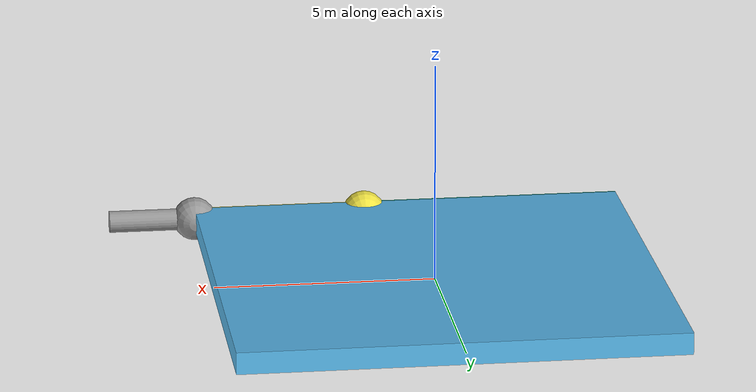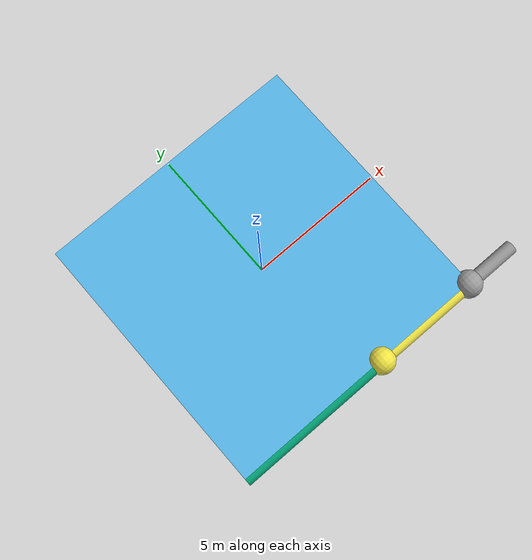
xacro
<?xml version="1.0"?>
<robot xmlns:xacro="http://www.ros.org/wiki/xacro" name="me">

    <!-- Xacro defn for a leg -->
    <xacro:macro name="leg" params="leg_no *origin">
        <!-- Joints -->
        <joint name="hip_${leg_no}" type="continuous">
            <parent link="chassis"/>
            <child link="thigh_${leg_no}"/>
            <axis xyz="0 0 1"/>
            <xacro:insert_block name="origin" />
            <limit effort="5" velocity="1.0" lower="-3.14159" upper="3.14159"/>

        </joint>
        <joint name="knee_${leg_no}" type="revolute">
            <parent link="thigh_${leg_no}"/>
            <child link="calf_${leg_no}"/>
            <axis xyz="0 0 1"/>
            <limit effort="5" velocity="1.0" lower="-3.14159" upper="3.14159"/>

            <origin xyz="6 0 0" rpy="0 0 0"/>
        </joint>
        <joint name="ankle_${leg_no}" type="revolute">
            <parent link="calf_${leg_no}"/>
            <child link="foot_${leg_no}"/>
            <axis xyz="0 0 1"/>
            <limit effort="5" velocity="1.0" lower="-3.14159" upper="3.14159"/>
            <origin xyz="4 0 0" rpy="0 0 0"/>
        </joint>
        <!-- Transmissions -->
        <transmission name="hip_trans_${leg_no}">
            <type>transmission_interface/SimpleTransmission</type>
            <actuator name="hip_motor_${leg_no}">
            <mechanicalReduction>1</mechanicalReduction>
            </actuator>
            <joint name="hip_${leg_no}">
            <hardwareInterface>hardware_interface/PositionJointInterface</hardwareInterface>
            </joint>
        </transmission>
        <transmission name="knee_trans_${leg_no}">
            <type>transmission_interface/SimpleTransmission</type>
            <actuator name="knee_motor_${leg_no}">
            <mechanicalReduction>1</mechanicalReduction>
            </actuator>
            <joint name="knee_${leg_no}">
            <hardwareInterface>hardware_interface/PositionJointInterface</hardwareInterface>
            </joint>
        </transmission>
        <transmission name="ankle_trans_${leg_no}">
            <type>transmission_interface/SimpleTransmission</type>
            <actuator name="ankle_motor_${leg_no}">
            <mechanicalReduction>1</mechanicalReduction>
            </actuator>
            <joint name="ankle_${leg_no}">
            <hardwareInterface>hardware_interface/PositionJointInterface</hardwareInterface>
            </joint>
        </transmission>
        <!-- Links -->
        <link name="thigh_${leg_no}">
            <collision>
                <origin xyz="3 0 0" rpy="0 1.57 0"/>
                <geometry>
                    <cylinder radius="0.25" length="6"/>
                </geometry>
            </collision>
            <visual>
                <origin xyz="3 0 0" rpy="0 1.57 0"/>
                <geometry>
                    <cylinder radius="0.25" length="6"/>
                </geometry>
            </visual>
            <inertial>
                <mass value="10"/>
                <inertia ixx="1" ixy="0" ixz="0" iyy="1" iyz="0" izz="1"/>
            </inertial>
        </link>
        <link name="calf_${leg_no}">
            <collision>
                <origin xyz="2 0 0.0" rpy="0 1.57 0.0"/>
                <geometry>
                    <cylinder radius="0.25" length="4"/>
                </geometry>
            </collision>
            <visual>
                <origin xyz="2 0 0.0" rpy="0 1.57 0.0"/>
                <geometry>
                    <cylinder radius="0.25" length="4"/>
                </geometry>
            </visual>
            <visual>
                <origin xyz="0 0 0.0" rpy="0.0 0.0 0.0"/>

                <geometry>
                    <sphere radius="0.5"/>
                </geometry>
            </visual>
            <inertial>
                <mass value="10"/>
                <inertia ixx="1" ixy="0" ixz="0" iyy="1" iyz="0" izz="1"/>
            </inertial>
        </link>
        <link name="foot_${leg_no}">
            <collision>
                <origin xyz="1 0 0.0" rpy="0.0 1.57 0.0"/>
                <geometry>
                    <cylinder radius="0.25" length="2"/>
                </geometry>
            </collision>
            <visual>
                <origin xyz="1 0 0.0" rpy="0.0 1.57 0.0"/>
                <geometry>
                    <cylinder radius="0.25" length="2"/>
                </geometry>
            </visual>
            <visual>
                <origin xyz="0 0 0.0" rpy="0.0 0.0 0.0"/>

                <geometry>
                    <sphere radius="0.5"/>
                </geometry>
            </visual>
            <inertial>
                <mass value="10"/>
                <inertia ixx="1" ixy="0" ixz="0" iyy="1" iyz="0" izz="1"/>
            </inertial>
        </link>
        <gazebo reference="foot_${leg_no}">
            <mu1 value="200.0"/>
            <mu2 value="100.0"/>
            <kp value="10000000.0" />
            <kd value="1.0" />
            <material>Gazebo/Grey</material>
        </gazebo>
    </xacro:macro>
    <!-- fixed frame and link without xacro -->
    <link name="map"/>
    <joint name="fixed" type="fixed">
        <parent link="map"/>
        <child link="chassis"/>
        <origin xyz="0.0 0.0 0.0" rpy="1.57 0 0"/>
    </joint>
    <link name="chassis">
        <collision>
            <origin xyz="0.0 0.0 0.0" rpy="0.0 0.0 0.0"/>
            <geometry>
                <box size="10.0 10.0 0.5"/>
            </geometry>
        </collision>
        <visual>
            <origin xyz="0.0 0.0 0.0" rpy="0.0 0.0 0.0"/>
            <geometry>
                <box size="10.0 0.5 10"/>
            </geometry>
        </visual>
        <inertial>
            <mass value="1000"/>
            <inertia ixx="100" ixy="0" ixz="0" iyy="100" iyz="0" izz="100"/>
        </inertial>
    </link>
    <!-- leg links with xacro -->
    <xacro:leg leg_no='1'>
        <origin xyz="-5 0 5" rpy="0 0 0"/>
    </xacro:leg>

    <gazebo>
        <plugin name="gazebo_ros_control" filename="libgazebo_ros_control.so">
        <robotNamespace>/</robotNamespace>
        </plugin>
    </gazebo>

</robot>
